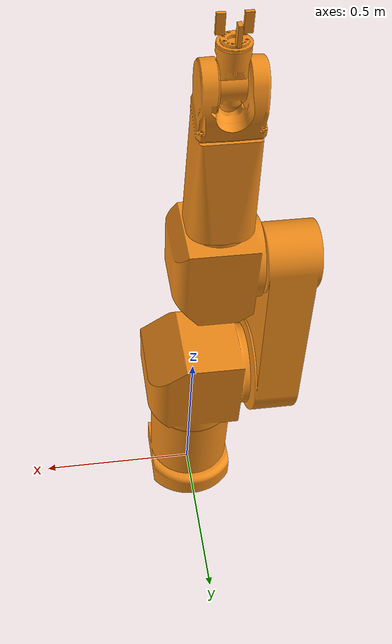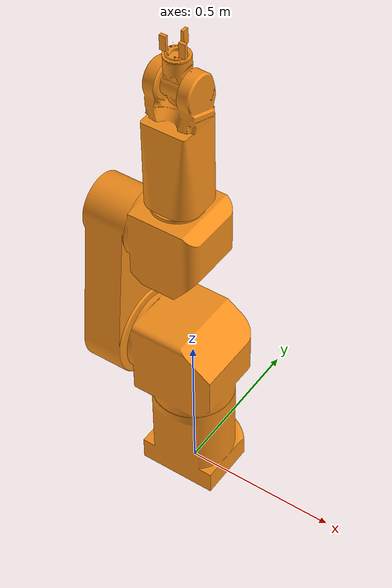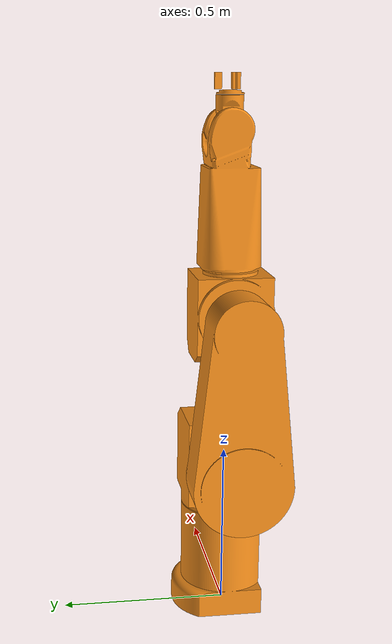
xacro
<?xml version="1.0"?>
<!-- Revolute-Revolute Manipulator -->
<robot name="rx90" xmlns:xacro="http://www.ros.org/wiki/xacro">

  <!-- Constants for robot dimensions -->

  <!-- Import all Gazebo-customization elements, including Gazebo colors -->
  <xacro:include filename="$(find rx90_description)/urdf/rx90.gazebo" />
  <!-- Import Rviz colors -->
  <xacro:include filename="$(find rx90_description)/urdf/materials.xacro" />

    <!--NO SE USA EL PLUGIN DESDE QUE PODEMOS SUBSCRIBRNOS A LOS TOPICOS DE GAZEBO-->
<gazebo>
<plugin name="gripper_plugin" filename="libgripper_plugin.so">
</plugin>
</gazebo>

  <link name="world"/>
<!--link name="base_link"/-->
<!--BRAZOOOOOOOOOOOOOOOOOOOO-->

<!-- Joint 0 -->

    <link name="RX90_BASE">
       <visual>
	<origin rpy="${pi/2} 0 ${pi/2}" xyz="0 0 0" />
          <geometry>
             <mesh filename="package://rx90_description/meshes/stl/RX-90_BASE.stl" scale="0.001 0.001 0.001" />
          </geometry>
       </visual>
	<collision>
        <origin rpy="${pi/2} 0 0" xyz="0 0 0" />
            <geometry>
              <mesh filename="package://rx90_description/meshes/stl/RX-90_BASE.stl" scale="0.001 0.001 0.001" />
            </geometry>
       </collision>
       <selfCollide>true</selfCollide>
	<inertial>
       <mass value="0.1"/>
          <origin xyz="0.0 0.00 0.0" rpy="0.0 0.0 0.0"/>
          <inertia ixx="0.1"  ixy="0.1"  ixz="0.1"
                   iyx="0.1"  iyy="0.1"  iyz="0.1"
                   izx="0.1"  izy="0.1"  izz="0.1"/>
    </inertial>
    </link>
    <joint name="RX90_BASE_JOINT" type="fixed">
       <parent link="world" />
       <child link="RX90_BASE" />
       <origin rpy="0 0 0" xyz="0 0 0.083" />
    </joint>

    <link name="RX90_SHOULDER">
       <visual>
	<origin rpy="0 ${-pi/2} ${pi/2}" xyz="0.122 0 0" />
          <geometry>
             <mesh filename="package://rx90_description/meshes/stl/RX-90_SHOULDER.stl" scale="0.001 0.001 0.001" />
          </geometry>
       </visual>
	<collision>
        <origin rpy="0 ${-pi/2} ${pi/2}" xyz="0.122 0 0" />
            <geometry>
              <mesh filename="package://rx90_description/meshes/stl/RX-90_SHOULDER.stl" scale="0.001 0.001 0.001" />
            </geometry>
       </collision>
       <selfCollide>true</selfCollide>
	<inertial>
      <mass value="0.1"/>
      <origin xyz="0.0 0.00 0.0" rpy="0.0 0.0 0.0"/>
          <inertia ixx="0.1"  ixy="0.1"  ixz="0.1"
                   iyx="0.1"  iyy="0.1"  iyz="0.1"
                   izx="0.1"  izy="0.1"  izz="0.1"/>
    </inertial>
    </link>
    <joint name="RX90_SHOULDER_JOINT" type="revolute">
    <limit effort="10000" lower="-2.7925" upper="2.7925" velocity="4.1189"/>
       <parent link="RX90_BASE" />
       <child link="RX90_SHOULDER" />
       <origin rpy="0 ${pi/2} 0" xyz="0 0 0.41" />
    </joint>

<link name="RX90_ARM">
       <visual>
	<origin rpy="0 0 ${pi/2}" xyz="0 0 0" />
          <geometry>
             <mesh filename="package://rx90_description/meshes/stl/RX-90_ARM.stl" scale="0.001 0.001 0.001" />
          </geometry>
       </visual>
	<collision>
        <origin rpy="0 0 ${pi/2}" xyz="0 0 0" />
            <geometry>
              <mesh filename="package://rx90_description/meshes/stl/RX-90_ARM.stl" scale="0.001 0.001 0.001" />
            </geometry>
       </collision>
       <selfCollide>true</selfCollide>
	<inertial>
        <mass value="0.1"/>
  <origin xyz="0.0 0.00 0.0" rpy="0.0 0.0 0.0"/>
          <inertia ixx="0.1"  ixy="0.1"  ixz="0.1"
                   iyx="0.1"  iyy="0.1"  iyz="0.1"
                   izx="0.1"  izy="0.1"  izz="0.1"/>
    </inertial>
    </link>
    <joint name="RX90_ARM_JOINT" type="revolute">
    <limit effort="10000" lower="-2.39" upper="2.39" velocity="3.4906"/>
       <parent link="RX90_SHOULDER" />
       <child link="RX90_ARM" />
       <origin rpy="0 ${pi/2} 0" xyz="0 0 -0.301" />
    </joint>

    <link name="RX90_ELBOW">
       <visual>
	<origin rpy="${-pi/2} ${-pi/2} ${-pi/2}" xyz="-0.021 0.14 0" />
          <geometry>
             <mesh filename="package://rx90_description/meshes/stl/RX-90_ELBOW.stl" scale="0.001 0.001 0.001" />
          </geometry>
       </visual>
	<collision>
        <origin rpy="${-pi/2} ${-pi/2} ${-pi/2}" xyz="-0.021 0.14 0" />
            <geometry>
              <mesh filename="package://rx90_description/meshes/stl/RX-90_ELBOW.stl" scale="0.001 0.001 0.001" />
            </geometry>
       </collision>
       <selfCollide>true</selfCollide>
	<inertial>
  <mass value="0.1"/>
        <origin xyz="0.0 0.00 0.0" rpy="0.0 0.0 0.0"/>
          <inertia ixx="0.1"  ixy="0.1"  ixz="0.1"
                   iyx="0.1"  iyy="0.1"  iyz="0.1"
                   izx="0.1"  izy="0.1"  izz="0.1"/>
    </inertial>
    </link>
    <joint name="RX90_ELBOW_JOINT" type="revolute">
    <limit effort="10000" lower="-2.487" upper="2.487" velocity="4.9916"/>
       <parent link="RX90_ARM" />
       <child link="RX90_ELBOW" />
       <origin rpy="${pi/2} 0 0" xyz="-0.255 0 -0.46" />
    </joint>

  <link name="RX90_FOREARM">
       <visual>
	<origin rpy="${pi} ${-pi/2} 0" xyz="0.355 0.1 -0.05" />
          <geometry>
             <mesh filename="package://rx90_description/meshes/stl/RX-90_FOREARM.stl" scale="0.001 0.001 0.001" />
          </geometry>
       </visual>
	<collision>
        <origin rpy="${pi} ${-pi/2} 0" xyz="0.355 0.1 -0.05" />
            <geometry>
              <mesh filename="package://rx90_description/meshes/stl/RX-90_FOREARM.stl" scale="0.001 0.001 0.001" />
            </geometry>
       </collision>
       <selfCollide>true</selfCollide>
	<inertial>
        <mass value="0.1"/>
          <origin xyz="0.0 0.00 0.0" rpy="0.0 0.0 0.0"/>
          <inertia ixx="0.1"  ixy="0.1"  ixz="0.1"
                   iyx="0.1"  iyy="0.1"  iyz="0.1"
                   izx="0.1"  izy="0.1"  izz="0.1"/>
    </inertial>
    </link>
    <joint name="RX90_FOREARM_JOINT" type="revolute">
    <limit effort="10000" lower="-3.14" upper="3.14" velocity="6.9987"/>
       <parent link="RX90_ELBOW" />
       <child link="RX90_FOREARM" />
       <origin rpy="0 0 ${-pi/2}" xyz="0 0 0" />
    </joint>

      <link name="RX90_WRIST">
       <visual>
	<origin rpy="${pi/2} 0 ${-pi/2}" xyz="-0.007 0 -0.01" />
          <geometry>
             <mesh filename="package://rx90_description/meshes/stl/RX-90_WRIST.stl" scale="0.001 0.001 0.001" />
          </geometry>
       </visual>
	<collision>
        <origin rpy="${pi/2} 0 ${-pi/2}" xyz="-0.007 0 -0.01" />
            <geometry>
              <mesh filename="package://rx90_description/meshes/stl/RX-90_WRIST.stl" scale="0.001 0.001 0.001" />
            </geometry>
       </collision>
       <selfCollide>true</selfCollide>
	<inertial>
       <mass value="0.1"/>
         <origin xyz="0.0 0.00 0.0" rpy="0.0 0.0 0.0"/>
          <inertia ixx="0.1"  ixy="0.1"  ixz="0.1"
                   iyx="0.1"  iyy="0.1"  iyz="0.1"
                   izx="0.1"  izy="0.1"  izz="0.1"/>
    </inertial>
    </link>
    <joint name="RX90_WRIST_JOINT" type="revolute">
    <limit effort="10000" lower="-2" upper="1.8325" velocity="5.585"/>
       <parent link="RX90_FOREARM" />
       <child link="RX90_WRIST" />
       <origin rpy="0 0 ${pi/2}" xyz="0.52 0 0" />
    </joint>

          <link name="RX90_FLANGE">
       <visual>
	<origin rpy="0 ${pi/2} 0" xyz="0 0 0" />
          <geometry>
             <mesh filename="package://rx90_description/meshes/stl/RX-90_FLANGE.stl" scale="0.001 0.001 0.001" />
          </geometry>
       </visual>
	<collision>
        <origin rpy="0 ${pi/2} 0" xyz="0 0 -0.009" />
            <geometry>
              <mesh filename="package://rx90_description/meshes/stl/RX-90_FLANGE.stl" scale="0.001 0.001 0.001" />
            </geometry>
       </collision>
       <selfCollide>true</selfCollide>
	<inertial>
         <origin xyz="0 0 0" rpy="0 0 0" />
         <mass value="0.1"/>
        <origin xyz="0.0 0.00 0.0" rpy="0.0 0.0 0.0"/>
          <inertia ixx="0.1"  ixy="0.1"  ixz="0.1"
                   iyx="0.1"  iyy="0.1"  iyz="0.1"
                   izx="0.1"  izy="0.1"  izz="0.1"/>
    </inertial>
    </link>
    <joint name="RX90_FLANGE_JOINT" type="revolute">
    <limit effort="10000" lower="-4.712" upper="4.712" velocity="10.122"/>
       <parent link="RX90_WRIST" />
       <child link="RX90_FLANGE" />
       <origin rpy="0 0 ${-pi/2}" xyz="-0.006 -0.1015 -0.009" />
    </joint>

          <link name="RX90_LGRIPPER">
       <visual>
	<origin rpy="0 0 0" xyz="0 0 0" />
          <geometry>
            <box size="0.02 0.045 0.01"/>
          </geometry>
       </visual>
	<collision>
        <origin rpy="0 0 0" xyz="0 0 0" />
            <geometry>
              <box size="0.02 0.045 0.01"/>
            </geometry>
       </collision>
       <selfCollide>true</selfCollide>
	<inertial>

        <mass value="0.1" />
  <origin xyz="0.0 0.00 0.0" rpy="0.0 0.0 0.0"/>
          <inertia ixx="0.1"  ixy="0.1"  ixz="0.1"
                   iyx="0.1"  iyy="0.1"  iyz="0.1"
                   izx="0.1"  izy="0.1"  izz="0.1"/>
    </inertial>
    </link>
    <joint name="RX90_LGRIPPER_JOINT" type="prismatic">
    <limit effort="100000.0" lower="-0.02" upper="0.0" velocity="20"/>
       <parent link="RX90_FLANGE" />
       <child link="RX90_LGRIPPER" />
       <origin rpy="0 0 ${-pi/2}" xyz="0.025 0.03 0.015" />
    </joint>

 <link name="RX90_RGRIPPER">
       <visual>
	<origin rpy="0 0 0" xyz="0 0 0" />
          <geometry>
            <box size="0.02 0.045 0.01"/>
          </geometry>
       </visual>
	<collision>
        <origin rpy="0 0 0" xyz="0 0 0" />
            <geometry>
              <box size="0.02 0.045 0.01"/>
            </geometry>
       </collision>
       <selfCollide>true</selfCollide>
	<inertial>
       <origin xyz="0 0 0" rpy="0 0 0" />
        <mass value="0.1" />

          <inertia ixx="0.1"  ixy="0.1"  ixz="0.1"
                   iyx="0.1"  iyy="0.1"  iyz="0.1"
                   izx="0.1"  izy="0.1"  izz="0.1"/>

    </inertial>
    </link>
    <joint name="RX90_RGRIPPER_JOINT" type="prismatic">
    <limit effort="100000.0" lower="-0.01" upper="0.02" velocity="20"/>
       <parent link="RX90_FLANGE" />
       <child link="RX90_RGRIPPER" />
       <origin rpy="0 0 ${-pi/2}" xyz="0.025 -0.03 0.015" />
    </joint>

     <link name="RX90_MGRIPPER">
       <visual>
	<origin rpy="0 0 0" xyz="0 0 0" />
          <geometry>
            <box size="0.02 0.045 0.01"/>
          </geometry>
       </visual>
	<collision>
        <origin rpy="0 0 0" xyz="0 0 0" />
            <geometry>
              <box size="0.02 0.045 0.01"/>
            </geometry>
       </collision>
       <selfCollide>true</selfCollide>
	<inertial>
       <origin xyz="0 0 0" rpy="0 0 0" />
        <mass value="0.1" />

          <inertia ixx="0.1"  ixy="0.1"  ixz="0.1"
                   iyx="0.1"  iyy="0.1"  iyz="0.1"
                   izx="0.1"  izy="0.1"  izz="0.1"/>

    </inertial>
    </link>
    <joint name="RX90_MGRIPPER_JOINT" type="prismatic">
    <limit effort="100000.0" lower="-0.01" upper="0.02" velocity="20"/>
       <parent link="RX90_FLANGE" />
       <child link="RX90_MGRIPPER" />
       <origin rpy="0 ${pi/2} ${-pi/2}" xyz="0.025 0 -0.035" />
    </joint>

      <link name="RX90_END">
       <visual>
	<origin rpy="0 0 0" xyz="0 0 0" />
          <geometry>
            <box size="0.0005 0.0005 0.0005"/>
          </geometry>
       </visual>
	<inertial>
       <origin xyz="0 0 0" rpy="0 0 0" />
        <mass value="0.1" />

          <inertia ixx="0.1"  ixy="0.1"  ixz="0.1"
                   iyx="0.1"  iyy="0.1"  iyz="0.1"
                   izx="0.1"  izy="0.1"  izz="0.1"/>

    </inertial>
    </link>
    <joint name="RX90_END_JOINT" type="prismatic">
    <limit effort="100000.0" lower="-0.03" upper="0.01" velocity="20"/>
       <parent link="RX90_FLANGE" />
       <child link="RX90_END" />
       <origin rpy="0 ${pi/2} ${-pi/2}" xyz="0.025 0.01 0.002" />
    </joint>

<!--BRAZOOOOOOOOOOOOOOOOOOOOooooooooooooooooooooooooooooooooooooooo-->

  <!-- Base Link -->

<!--TRANSMISION BRAZO-->

<transmission name="tran_RX90_SHOULDER_JOINT">
    <type>transmission_interface/SimpleTransmission</type>
    <joint name="RX90_SHOULDER_JOINT">
      <hardwareInterface>hardware_interface/EffortJointInterface</hardwareInterface>
    </joint>
    <actuator name="motor_RX90_SHOULDER_JOINT">
      <hardwareInterface>hardware_interface/EffortJointInterface</hardwareInterface>
      <mechanicalReduction>1</mechanicalReduction>
    </actuator>
  </transmission>

<transmission name="tran_RX90_ARM_JOINT">
    <type>transmission_interface/SimpleTransmission</type>
    <joint name="RX90_ARM_JOINT">
      <hardwareInterface>hardware_interface/EffortJointInterface</hardwareInterface>
    </joint>
    <actuator name="motor_RX90_ARM_JOINT">
      <hardwareInterface>hardware_interface/EffortJointInterface</hardwareInterface>
      <mechanicalReduction>1</mechanicalReduction>
    </actuator>
  </transmission>

  <transmission name="tran_RX90_ELBOW_JOINT">
    <type>transmission_interface/SimpleTransmission</type>
    <joint name="RX90_ELBOW_JOINT">
      <hardwareInterface>hardware_interface/EffortJointInterface</hardwareInterface>
    </joint>
    <actuator name="motor_RX90_ELBOW_JOINT">
      <hardwareInterface>hardware_interface/EffortJointInterface</hardwareInterface>
      <mechanicalReduction>1</mechanicalReduction>
    </actuator>
  </transmission>

  <transmission name="tran_RX90_FOREARM_JOINT">
    <type>transmission_interface/SimpleTransmission</type>
    <joint name="RX90_FOREARM_JOINT">
      <hardwareInterface>hardware_interface/EffortJointInterface</hardwareInterface>
    </joint>
    <actuator name="motor_RX90_FOREARM_JOINT">
      <hardwareInterface>hardware_interface/EffortJointInterface</hardwareInterface>
      <mechanicalReduction>1</mechanicalReduction>
    </actuator>
  </transmission>

  <transmission name="tran_RX90_WRIST_JOINT">
    <type>transmission_interface/SimpleTransmission</type>
    <joint name="RX90_WRIST_JOINT">
      <hardwareInterface>hardware_interface/EffortJointInterface</hardwareInterface>
    </joint>
    <actuator name="motor_RX90_WRIST_JOINT">
      <hardwareInterface>hardware_interface/EffortJointInterface</hardwareInterface>
      <mechanicalReduction>1</mechanicalReduction>
    </actuator>
  </transmission>

  <transmission name="tran_RX90_FLANGE_JOINT">
    <type>transmission_interface/SimpleTransmission</type>
    <joint name="RX90_FLANGE_JOINT">
      <hardwareInterface>hardware_interface/EffortJointInterface</hardwareInterface>
    </joint>
    <actuator name="motor_RX90_FLANGE_JOINT">
      <hardwareInterface>hardware_interface/EffortJointInterface</hardwareInterface>
      <mechanicalReduction>1</mechanicalReduction>
    </actuator>
  </transmission>

    <transmission name="tran_RX90_LGRIPPER_JOINT">
    <type>transmission_interface/SimpleTransmission</type>
    <joint name="RX90_LGRIPPER_JOINT">
      <hardwareInterface>hardware_interface/EffortJointInterface</hardwareInterface>
    </joint>
    <actuator name="motor_RX90_LGRIPPER_JOINT">
      <hardwareInterface>hardware_interface/EffortJointInterface</hardwareInterface>
      <mechanicalReduction>1</mechanicalReduction>
    </actuator>
  </transmission>

    <transmission name="tran_RX90_RGRIPPER_JOINT">
    <type>transmission_interface/SimpleTransmission</type>
    <joint name="RX90_RGRIPPER_JOINT">
      <hardwareInterface>hardware_interface/EffortJointInterface</hardwareInterface>
    </joint>
    <actuator name="motor_RX90_RGRIPPER_JOINT">
      <hardwareInterface>hardware_interface/EffortJointInterface</hardwareInterface>
      <mechanicalReduction>1</mechanicalReduction>
    </actuator>
  </transmission>

      <transmission name="tran_RX90_MGRIPPER_JOINT">
    <type>transmission_interface/SimpleTransmission</type>
    <joint name="RX90_MGRIPPER_JOINT">
      <hardwareInterface>hardware_interface/EffortJointInterface</hardwareInterface>
    </joint>
    <actuator name="motor_RX90_MGRIPPER_JOINT">
      <hardwareInterface>hardware_interface/EffortJointInterface</hardwareInterface>
      <mechanicalReduction>1</mechanicalReduction>
    </actuator>
  </transmission>

      <transmission name="tran_RX90_END_JOINT">
    <type>transmission_interface/SimpleTransmission</type>
    <joint name="RX90_END_JOINT">
      <hardwareInterface>hardware_interface/EffortJointInterface</hardwareInterface>
    </joint>
    <actuator name="motor_RX90_END_JOINT">
      <hardwareInterface>hardware_interface/EffortJointInterface</hardwareInterface>
      <mechanicalReduction>1</mechanicalReduction>
    </actuator>
  </transmission>

</robot>
